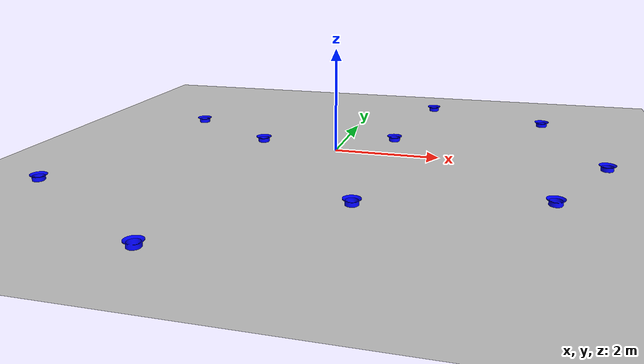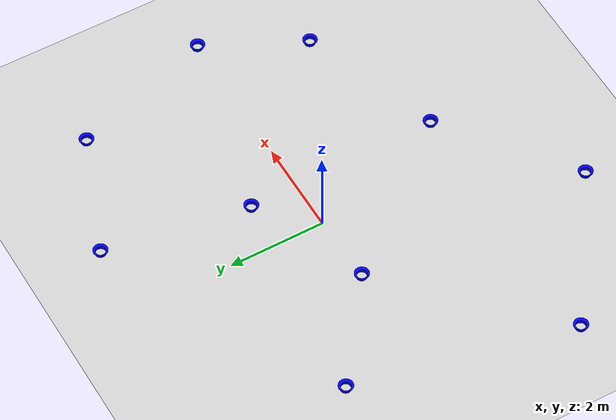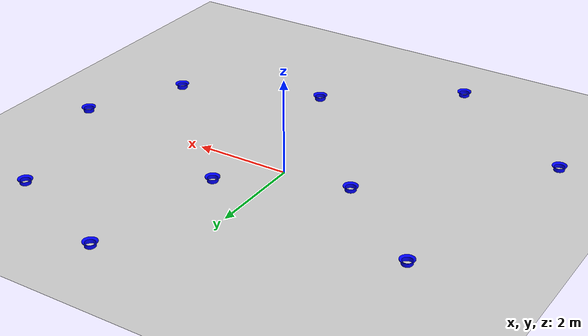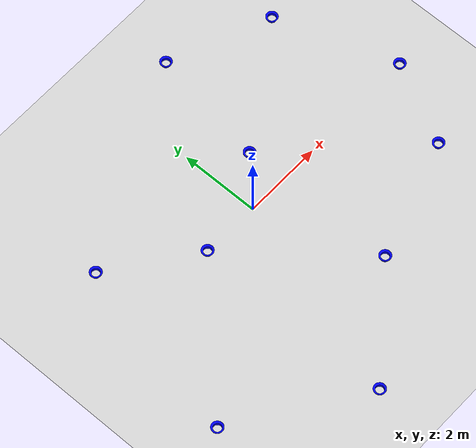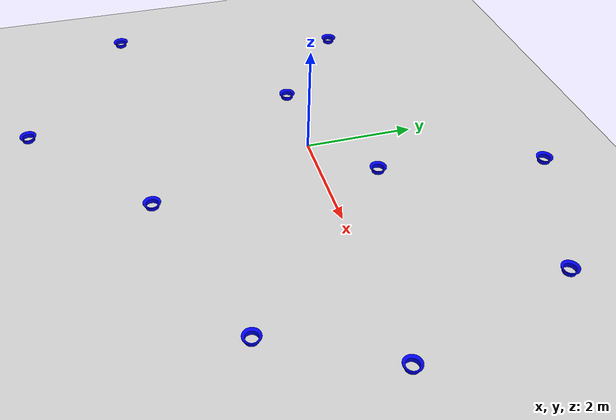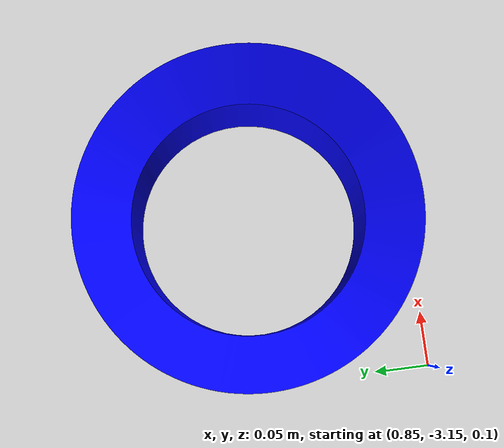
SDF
<sdf version="1.7">
 <world name="default">
  <light name="sun" type="directional">
   <pose>0 0 10 0 -0 0</pose>
   <diffuse>0.8 0.8 0.8 1</diffuse>
   <specular>0.2 0.2 0.2 1</specular>
   <attenuation>
    <range>1000</range>
    <constant>0.9</constant>
    <linear>0.01</linear>
    <quadratic>0.001</quadratic>
   </attenuation>
   <direction>-0.5 0.1 -0.9</direction>
   <spot><inner_angle>0</inner_angle><outer_angle>0</outer_angle><falloff>0</falloff></spot>
  </light>
  <model name="ground_plane">
   <static>1</static>
   <link name="link">
    <collision name="collision">
     <geometry><plane><normal>0 0 1</normal><size>100 100</size></plane></geometry>
     <surface>
      <contact><collide_bitmask>65535</collide_bitmask></contact>
      <friction><ode><mu>100</mu><mu2>50</mu2></ode></friction>
     </surface>
    </collision>
    <visual name="visual">
     <cast_shadows>0</cast_shadows>
     <geometry><plane><normal>0 0 1</normal><size>100 100</size></plane></geometry>
     <material>
      <script><uri>file://media/materials/scripts/gazebo.material</uri><name>Gazebo/Grey</name></script>
     </material>
    </visual>
   </link>
  </model>
  <gravity>0 0 -9.8</gravity>
  <magnetic_field>6e-06 2.3e-05 -4.2e-05</magnetic_field>
  <atmosphere type="adiabatic"/>
  <physics type="ode">
   <max_step_size>0.001</max_step_size>
   <real_time_factor>1</real_time_factor>
   <real_time_update_rate>1000</real_time_update_rate>
  </physics>
  <scene><ambient>0.4 0.4 0.4 1</ambient><background>0.7 0.7 0.7 1</background><shadows>1</shadows></scene>
  <spherical_coordinates>
   <surface_model>EARTH_WGS84</surface_model>
   <latitude_deg>0</latitude_deg>
   <longitude_deg>0</longitude_deg>
   <elevation>0</elevation>
   <heading_deg>0</heading_deg>
  </spherical_coordinates>
  <include><uri>model://ring</uri><name>ring_1</name><pose>1.5 4.0 0.040655 0 0 0</pose></include>
  <include><uri>model://ring</uri><name>ring_2</name><pose>4 3 0.045899 0 0 0</pose></include>
  <include><uri>model://ring</uri><name>ring_3</name><pose>5 0 0.045899 0 0 0</pose></include>
  <include><uri>model://ring</uri><name>ring_4</name><pose>1 1 0.045899 0 0 0</pose></include>
  <include><uri>model://ring</uri><name>ring_5</name><pose>4.0 -2.0 0.045899 0 0 0</pose></include>
  <include><uri>model://ring</uri><name>ring_6</name><pose>1 -3 0.132660 0 0 0</pose></include>
  <include><uri>model://ring</uri><name>ring_7</name><pose>-3.5 1.5 0.045899 0 0 0</pose></include>
  <include><uri>model://ring</uri><name>ring_8</name><pose>-1.5 0 0.132660 0 0 0</pose></include>
  <include><uri>model://ring</uri><name>ring_9</name><pose>-4.5 -3.0 0.045899 0 0 0</pose></include>
  <include><uri>model://ring</uri><name>ring_10</name><pose>-1.5 -5.0 0.045899 0 0 0</pose></include>
 </world>
</sdf>

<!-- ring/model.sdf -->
<sdf version="1.5">
  <model name="ring">
    <!-- Set the model as static -->
    <static>true</static>

    <!-- Give the base link a unique name -->
    <link name="base">
      <!-- Offset the base by half the length of the cylinder -->
      <pose>0 0 0 0 0 0</pose>
      <inertial>
        <mass>1</mass>
        <inertia>
          <ixx>0.001087473</ixx>
          <iyy>0.001087473</iyy>
          <izz>0.001092437</izz>
          <ixy>0</ixy>
          <ixz>0</ixz>
          <iyz>0</iyz>
        </inertia>
      </inertial>
      <collision name="base_collision">
        <geometry>
          <cylinder>
            <!-- Radius and length provided by Velodyne -->
            <radius>.15</radius>
            <length>.11</length>
          </cylinder>
        </geometry>
      </collision>

      <!-- The visual is mostly a copy of the collision -->
      <visual name="base_visual">
        <!-- Offset the visual by half the base's height. We are not rotating
             mesh since symmetrical -->
        <pose>-0.15 0.15 -0.055 1.57 0 0</pose>
        <geometry>
          <mesh>
            <uri>model://ring/meshes/tube_mesh.stl</uri>
            <scale>0.001 0.001 0.001</scale>
          </mesh>
        </geometry>
        <material>
          <ambient>0 0 1 1</ambient> <!-- Ambient color: blue -->
          <specular>0.1 0.1 0.1 1</specular> <!-- Small specular highlight -->
        </material>
      </visual>
    </link>
  </model>
</sdf>
